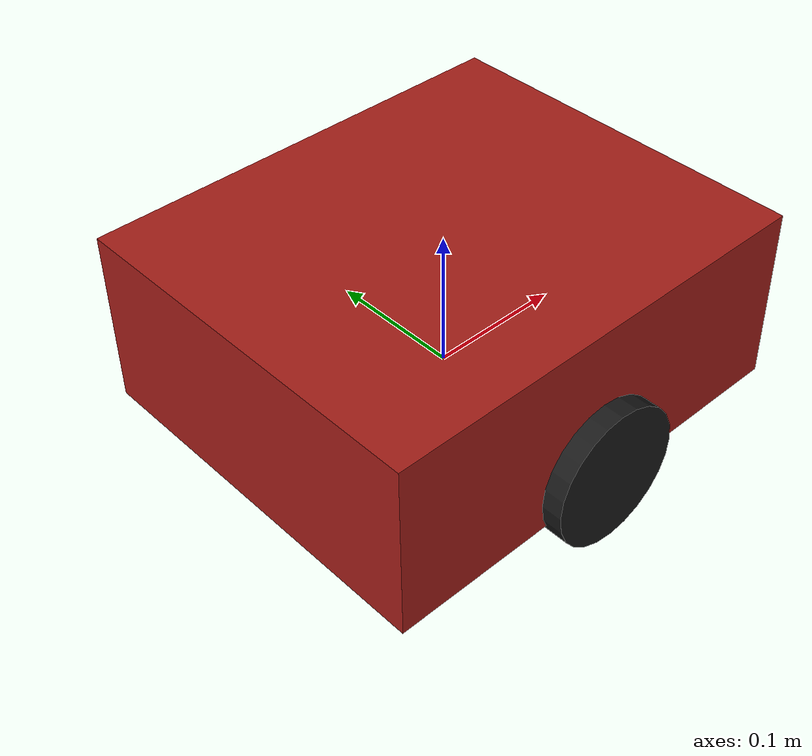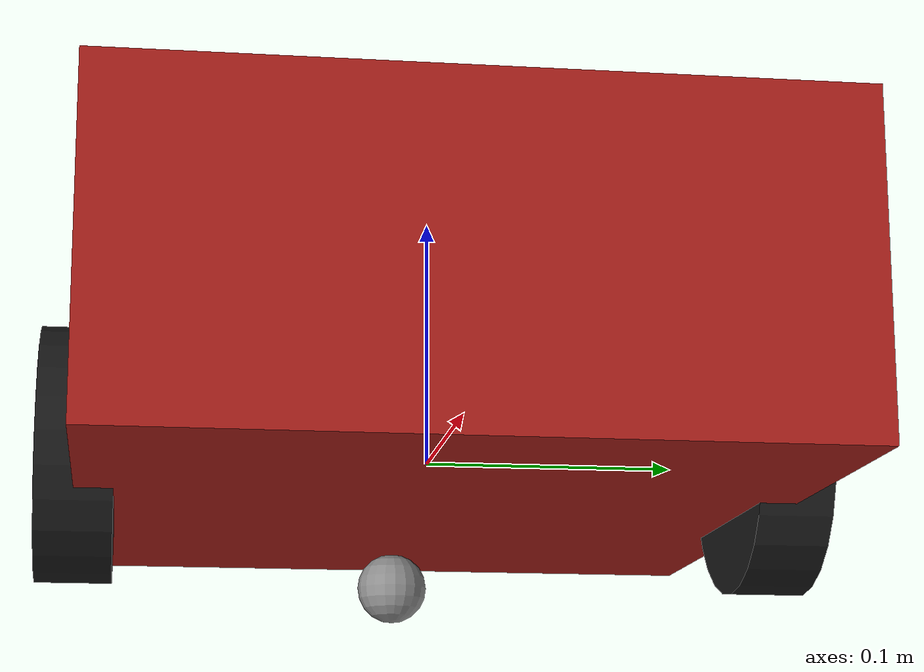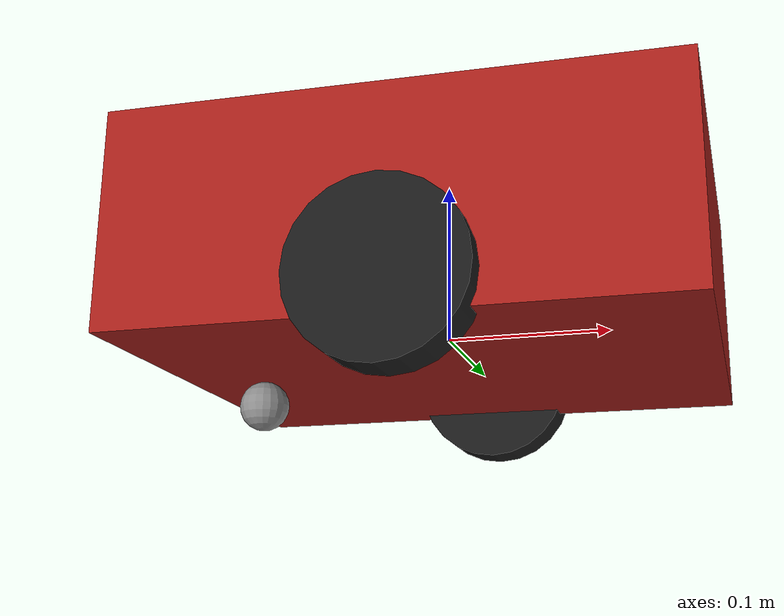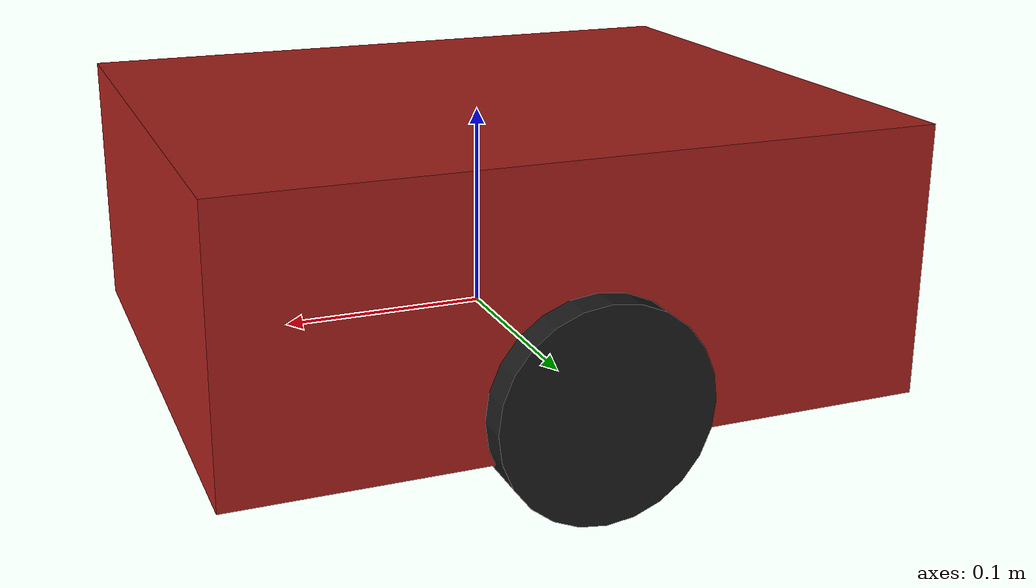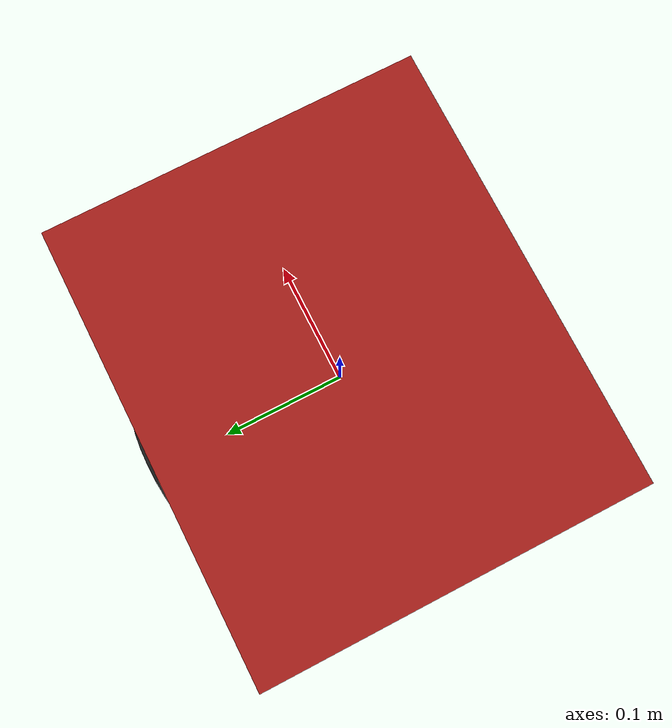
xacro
<?xml version="1.0"?>
<!--
  Top-level AmigoBot description.

  Build it standalone with:
      rosrun xacro xacro amigo.urdf.xacro > /tmp/amigo.urdf
      check_urdf /tmp/amigo.urdf
-->
<robot name="amigo" xmlns:xacro="http://www.ros.org/wiki/xacro">

  <xacro:arg name="simulation" default="true"/>

  <xacro:include filename="$(find amigo_description)/urdf/amigo_properties.xacro"/>
  <xacro:include filename="$(find amigo_description)/urdf/amigo_inertia.xacro"/>
  <xacro:include filename="$(find amigo_description)/urdf/amigo_base.xacro"/>
  <xacro:include filename="$(find amigo_description)/urdf/amigo_sonar.xacro"/>

  <!-- Gazebo plugins are only injected when the model is spawned in Gazebo.
       On the real robot RosAria owns cmd_vel/odom, so we leave them out. -->
  <xacro:if value="$(arg simulation)">
    <xacro:include filename="$(find amigo_description)/urdf/amigo_gazebo.xacro"/>
  </xacro:if>

</robot>

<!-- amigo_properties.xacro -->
<robot xmlns:xacro="http://www.ros.org/wiki/xacro">

  <!-- ============ Drive train ============ -->
  <xacro:property name="wheel_radius"     value="0.0508"/>  <!-- 4 in tires        -->
  <xacro:property name="wheel_width"      value="0.030"/>
  <xacro:property name="wheel_separation" value="0.280"/>   <!-- VERIFY by test    -->
  <xacro:property name="wheel_mass"       value="0.25"/>
  <xacro:property name="wheel_x"          value="0.000"/>   <!-- axle at base_link -->

  <!-- ============ Body ============ -->
  <xacro:property name="body_length"  value="0.330"/>
  <xacro:property name="body_width"   value="0.280"/>
  <xacro:property name="body_height"  value="0.130"/>
  <xacro:property name="body_clear"   value="0.030"/>       <!-- ground clearance  -->
  <xacro:property name="body_mass"    value="3.00"/>
  <xacro:property name="body_com_x"   value="-0.050"/>

  <!-- base_link sits on the wheel axle, so the body underside is at
       (body_clear - wheel_radius) in base_link coordinates. -->
  <xacro:property name="body_z" value="${body_clear - wheel_radius + body_height/2.0}"/>

  <!-- ============ Rear caster ============ -->
  <xacro:property name="caster_radius" value="0.0155"/>
  <xacro:property name="caster_x"      value="-0.120"/>
  <xacro:property name="caster_mass"   value="0.10"/>

  <!-- ============ Sonar ring ============ -->
  <xacro:property name="sonar_min_range" value="0.10"/>
  <xacro:property name="sonar_max_range" value="4.00"/>
  <xacro:property name="sonar_fov"       value="0.14"/>     <!-- ~8 deg cone -->
  <xacro:property name="sonar_z"         value="0.020"/>
  <xacro:property name="sonar_rate"      value="10.0"/>

  <xacro:property name="PI" value="3.14159265359"/>

</robot>

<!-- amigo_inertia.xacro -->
<!-- Reusable inertia macros.  Every Gazebo link needs a non-degenerate
     inertia tensor or the physics engine will silently misbehave. -->
<robot xmlns:xacro="http://www.ros.org/wiki/xacro">

  <xacro:macro name="box_inertial" params="m x y z *origin">
    <inertial>
      <xacro:insert_block name="origin"/>
      <mass value="${m}"/>
      <inertia ixx="${m*(y*y + z*z)/12.0}" ixy="0.0" ixz="0.0"
               iyy="${m*(x*x + z*z)/12.0}" iyz="0.0"
               izz="${m*(x*x + y*y)/12.0}"/>
    </inertial>
  </xacro:macro>

  <!-- Solid cylinder, symmetry axis along the LOCAL z of the given origin. -->
  <xacro:macro name="cylinder_inertial" params="m r h *origin">
    <inertial>
      <xacro:insert_block name="origin"/>
      <mass value="${m}"/>
      <inertia ixx="${m*(3.0*r*r + h*h)/12.0}" ixy="0.0" ixz="0.0"
               iyy="${m*(3.0*r*r + h*h)/12.0}" iyz="0.0"
               izz="${m*r*r/2.0}"/>
    </inertial>
  </xacro:macro>

  <xacro:macro name="sphere_inertial" params="m r *origin">
    <inertial>
      <xacro:insert_block name="origin"/>
      <mass value="${m}"/>
      <inertia ixx="${2.0*m*r*r/5.0}" ixy="0.0" ixz="0.0"
               iyy="${2.0*m*r*r/5.0}" iyz="0.0"
               izz="${2.0*m*r*r/5.0}"/>
    </inertial>
  </xacro:macro>

</robot>

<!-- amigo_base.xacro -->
<robot xmlns:xacro="http://www.ros.org/wiki/xacro">

  <material name="amigo_red">   <color rgba="0.65 0.12 0.10 1.0"/></material>
  <material name="amigo_black"> <color rgba="0.10 0.10 0.10 1.0"/></material>
  <material name="amigo_grey">  <color rgba="0.55 0.55 0.55 1.0"/></material>
  <material name="amigo_gold">  <color rgba="0.80 0.66 0.24 1.0"/></material>

  <!-- ==================== base_link ==================== -->
  <link name="base_link">
    <visual>
      <origin xyz="0 0 ${body_z}" rpy="0 0 0"/>
      <geometry>
        <box size="${body_length} ${body_width} ${body_height}"/>
      </geometry>
      <material name="amigo_red"/>
    </visual>
    <collision>
      <origin xyz="0 0 ${body_z}" rpy="0 0 0"/>
      <geometry>
        <box size="${body_length} ${body_width} ${body_height}"/>
      </geometry>
    </collision>
    <xacro:box_inertial m="${body_mass}" x="${body_length}" y="${body_width}" z="${body_height}">
      <origin xyz="${body_com_x} 0 ${body_z}" rpy="0 0 0"/>
    </xacro:box_inertial>
  </link>

  <!-- ==================== base_footprint ==================== -->
  <link name="base_footprint"/>
  <joint name="base_footprint_joint" type="fixed">
    <parent link="base_link"/>
    <child  link="base_footprint"/>
    <origin xyz="0 0 ${-wheel_radius}" rpy="0 0 0"/>
  </joint>

  <!-- ==================== Drive wheels ==================== -->
  <xacro:macro name="drive_wheel" params="side reflect">
    <link name="${side}_wheel_link">
      <visual>
        <origin xyz="0 0 0" rpy="${PI/2} 0 0"/>
        <geometry><cylinder radius="${wheel_radius}" length="${wheel_width}"/></geometry>
        <material name="amigo_black"/>
      </visual>
      <collision>
        <geometry><sphere radius="${wheel_radius}"/></geometry>
      </collision>
      <xacro:cylinder_inertial m="${wheel_mass}" r="${wheel_radius}" h="${wheel_width}">
        <origin xyz="0 0 0" rpy="${PI/2} 0 0"/>
      </xacro:cylinder_inertial>
    </link>

    <joint name="${side}_wheel_joint" type="continuous">
      <parent link="base_link"/>
      <child  link="${side}_wheel_link"/>
      <origin xyz="${wheel_x} ${reflect*wheel_separation/2.0} 0" rpy="0 0 0"/>
      <axis xyz="0 1 0"/>
      <limit effort="5.0" velocity="${1.0/wheel_radius}"/>
      <dynamics damping="0.01" friction="0.001"/>
    </joint>
  </xacro:macro>

  <xacro:drive_wheel side="left"  reflect="1"/>
  <xacro:drive_wheel side="right" reflect="-1"/>

  <!-- ==================== Rear caster ==================== -->
  <link name="caster_link">
    <visual>
      <geometry><sphere radius="${caster_radius}"/></geometry>
      <material name="amigo_grey"/>
    </visual>
    <collision>
      <geometry><sphere radius="${caster_radius}"/></geometry>
    </collision>
    <xacro:sphere_inertial m="${caster_mass}" r="${caster_radius}">
      <origin xyz="0 0 0" rpy="0 0 0"/>
    </xacro:sphere_inertial>
  </link>

  <joint name="caster_joint" type="fixed">
    <parent link="base_link"/>
    <child  link="caster_link"/>
    <origin xyz="${caster_x} 0 ${caster_radius - wheel_radius}" rpy="0 0 0"/>
  </joint>

</robot>

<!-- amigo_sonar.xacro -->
<robot xmlns:xacro="http://www.ros.org/wiki/xacro">

  <xacro:macro name="sonar_unit" params="id x y yaw">

    <link name="sonar_${id}_link">
      <visual>
        <geometry><cylinder radius="0.010" length="0.004"/></geometry>
        <origin xyz="0 0 0" rpy="0 ${PI/2} 0"/>
        <material name="amigo_gold"/>
      </visual>
      <inertial>
        <mass value="0.001"/>
        <inertia ixx="1e-7" ixy="0" ixz="0" iyy="1e-7" iyz="0" izz="1e-7"/>
      </inertial>
    </link>

    <joint name="sonar_${id}_joint" type="fixed">
      <parent link="base_link"/>
      <child  link="sonar_${id}_link"/>
      <origin xyz="${x} ${y} ${sonar_z}" rpy="0 0 ${yaw}"/>
    </joint>

    <gazebo reference="sonar_${id}_link">
      <material>Gazebo/Gold</material>
      <sensor type="ray" name="sonar_${id}_sensor">
        <pose>0 0 0 0 0 0</pose>
        <visualize>false</visualize>
        <update_rate>${sonar_rate}</update_rate>
        <ray>
          <scan>
            <horizontal>
              <samples>5</samples>
              <resolution>1.0</resolution>
              <min_angle>${-sonar_fov/2.0}</min_angle>
              <max_angle>${ sonar_fov/2.0}</max_angle>
            </horizontal>
          </scan>
          <range>
            <min>${sonar_min_range}</min>
            <max>${sonar_max_range}</max>
            <resolution>0.01</resolution>
          </range>
        </ray>
        <plugin name="sonar_${id}_controller" filename="libgazebo_ros_range.so">
          <alwaysOn>true</alwaysOn>
          <updateRate>${sonar_rate}</updateRate>
          <topicName>sonar/range_${id}</topicName>
          <frameName>sonar_${id}_link</frameName>
          <fov>${sonar_fov}</fov>
          <radiation>ultrasound</radiation>
          <gaussianNoise>0.005</gaussianNoise>
        </plugin>
      </sensor>
    </gazebo>

  </xacro:macro>

  <!-- id      x        y        yaw (rad)          -->
  <xacro:sonar_unit id="0" x=" 0.070" y=" 0.100" yaw=" 1.5708"/>  <!--  +90 deg  left side  -->
  <xacro:sonar_unit id="1" x=" 0.125" y=" 0.075" yaw=" 0.7156"/>  <!--  +41 deg             -->
  <xacro:sonar_unit id="2" x=" 0.144" y=" 0.030" yaw=" 0.2618"/>  <!--  +15 deg             -->
  <xacro:sonar_unit id="3" x=" 0.144" y="-0.030" yaw="-0.2618"/>  <!--  -15 deg             -->
  <xacro:sonar_unit id="4" x=" 0.120" y="-0.075" yaw="-0.7156"/>  <!--  -41 deg             -->
  <xacro:sonar_unit id="5" x=" 0.070" y="-0.100" yaw="-1.5708"/>  <!--  -90 deg  right side -->
  <xacro:sonar_unit id="6" x="-0.146" y="-0.058" yaw="-2.5307"/>  <!-- -145 deg  rear right -->
  <xacro:sonar_unit id="7" x="-0.146" y=" 0.058" yaw=" 2.5307"/>  <!-- +145 deg  rear left  -->

</robot>
